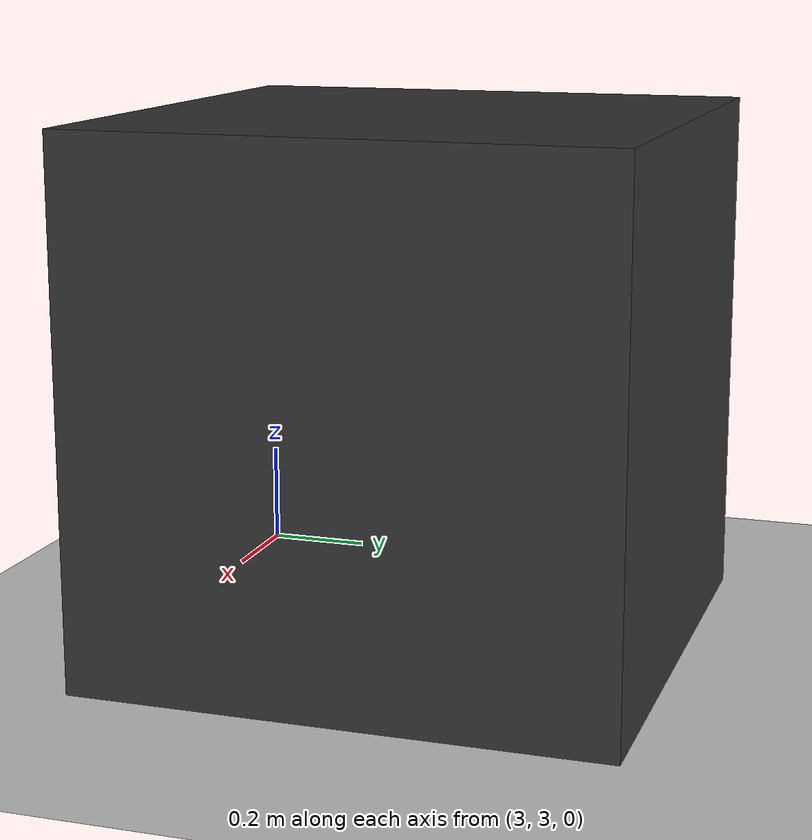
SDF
<?xml version="1.0" ?>
<sdf version="1.6">
  <world name="default">
    <include><uri>model://sun</uri></include>
    <include><uri>model://ground_plane</uri></include>

    <model name='obstacle_1'>
      <pose>3.5 3.5 0.5 0 0 0</pose> <link name='link'>
        <collision name='collision'>
          <geometry><box><size>1 1 1</size></box></geometry>
        </collision>
        <visual name='visual'>
          <geometry><box><size>1 1 1</size></box></geometry>
          <material>
            <ambient>0.1 0.1 0.1 1</ambient> <diffuse>0.2 0.2 0.2 1</diffuse>
          </material>
        </visual>
      </link>
      <static>1</static> </model>

    <gui fullscreen='0'>
      <camera name='user_camera'>
        <pose>19.0 -11.8 14.0 0.0 0.46 2.42</pose>
        <view_controller>orbit</view_controller>
      </camera>
    </gui>
  </world>
</sdf>
